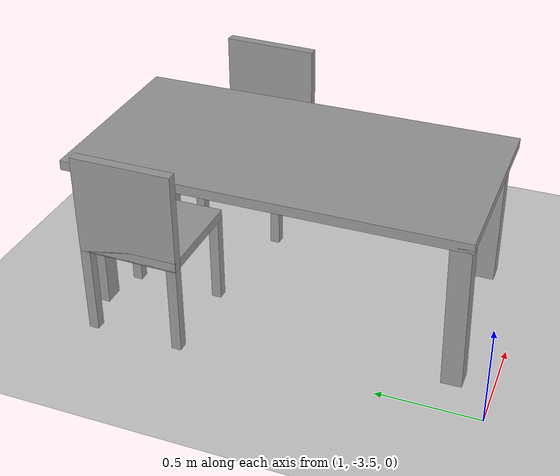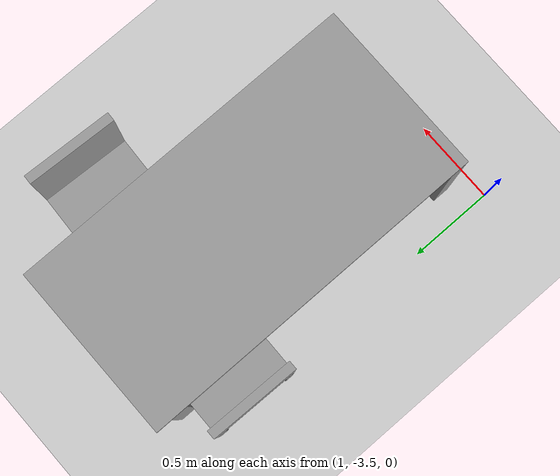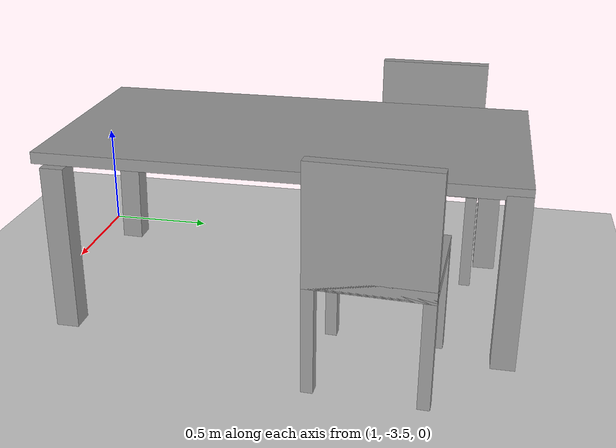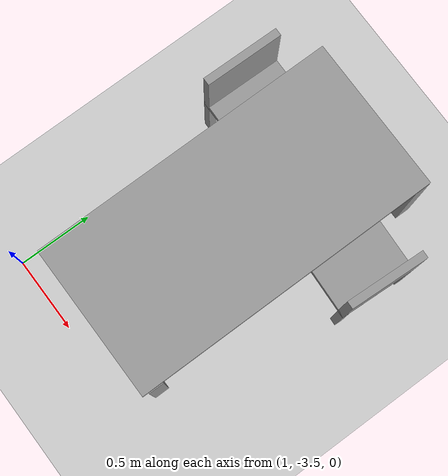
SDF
<sdf version="1.6">
 <world name="default">
  <model name="ground_plane">
   <static>1</static>
   <link name="link">
    <collision name="collision">
     <geometry><plane><normal>0 0 1</normal><size>100 100</size></plane></geometry>
     <surface><friction><ode><mu>100</mu><mu2>50</mu2></ode></friction></surface>
    </collision>
    <visual name="visual">
     <cast_shadows>0</cast_shadows>
     <geometry><plane><normal>0 0 1</normal><size>100 100</size></plane></geometry>
     <material>
      <script><uri>file://media/materials/scripts/gazebo.material</uri><name>Gazebo/Grey</name></script>
     </material>
    </visual>
   </link>
  </model>
  <model name="table">
   <link name="link_2">
    <pose>-0.000914 0.01077 -0.287764 0 -0 0</pose>
    <inertial>
     <mass>1</mass>
     <inertia>
      <ixx>0.166667</ixx>
      <ixy>0</ixy>
      <ixz>0</ixz>
      <iyy>0.166667</iyy>
      <iyz>0</iyz>
      <izz>0.166667</izz>
     </inertia>
    </inertial>
    <visual name="visual">
     <pose>0 0 0.75 0 -0 0</pose>
     <geometry><box><size>1 2 0.05</size></box></geometry>
     <material>
      <lighting>1</lighting>
      <script><uri>file://media/materials/scripts/gazebo.material</uri><name>Gazebo/Grey</name></script>
      <ambient>0.3 0.3 0.3 1</ambient>
      <diffuse>0.7 0.7 0.7 1</diffuse>
      <specular>0.01 0.01 0.01 1</specular>
      <emissive>0 0 0 1</emissive>
      <shader type="vertex"><normal_map>__default__</normal_map></shader>
     </material>
    </visual>
    <collision name="collision">
     <pose>0 0 0.75 0 -0 0</pose>
     <geometry><box><size>1 2 0.05</size></box></geometry>
     <surface>
      <friction>
       <ode><mu>1</mu><mu2>1</mu2><fdir1>0 0 0</fdir1><slip1>0</slip1><slip2>0</slip2></ode>
       <torsional>
        <coefficient>1</coefficient>
        <patch_radius>0</patch_radius>
        <surface_radius>0</surface_radius>
        <use_patch_radius>1</use_patch_radius>
        <ode><slip>0</slip></ode>
       </torsional>
      </friction>
      <bounce><restitution_coefficient>0</restitution_coefficient><threshold>1e+06</threshold></bounce>
      <contact>
       <collide_without_contact>0</collide_without_contact>
       <collide_without_contact_bitmask>1</collide_without_contact_bitmask>
       <collide_bitmask>1</collide_bitmask>
       <ode>
        <soft_cfm>0</soft_cfm>
        <soft_erp>0.2</soft_erp>
        <kp>1e+13</kp>
        <kd>1</kd>
        <max_vel>0.01</max_vel>
        <min_depth>0</min_depth>
       </ode>
       <bullet>
        <split_impulse>1</split_impulse>
        <split_impulse_penetration_threshold>-0.01</split_impulse_penetration_threshold>
        <soft_cfm>0</soft_cfm>
        <soft_erp>0.2</soft_erp>
        <kp>1e+13</kp>
        <kd>1</kd>
       </bullet>
      </contact>
     </surface>
    </collision>
   </link>
   <link name="link_3">
    <pose>-0.450914 0.87078 0.080236 0 -0 0</pose>
    <inertial>
     <mass>1</mass>
     <inertia>
      <ixx>0.166667</ixx>
      <ixy>0</ixy>
      <ixz>0</ixz>
      <iyy>0.166667</iyy>
      <iyz>0</iyz>
      <izz>0.166667</izz>
     </inertia>
    </inertial>
    <visual name="visual">
     <geometry><box><size>0.1 0.1 0.75</size></box></geometry>
     <material>
      <lighting>1</lighting>
      <script><uri>file://media/materials/scripts/gazebo.material</uri><name>Gazebo/Grey</name></script>
      <ambient>0.3 0.3 0.3 1</ambient>
      <diffuse>0.7 0.7 0.7 1</diffuse>
      <specular>0.01 0.01 0.01 1</specular>
      <emissive>0 0 0 1</emissive>
      <shader type="vertex"><normal_map>__default__</normal_map></shader>
     </material>
    </visual>
    <collision name="collision">
     <geometry><box><size>0.1 0.1 0.75</size></box></geometry>
     <surface>
      <friction>
       <ode><mu>1</mu><mu2>1</mu2><fdir1>0 0 0</fdir1><slip1>0</slip1><slip2>0</slip2></ode>
       <torsional>
        <coefficient>1</coefficient>
        <patch_radius>0</patch_radius>
        <surface_radius>0</surface_radius>
        <use_patch_radius>1</use_patch_radius>
        <ode><slip>0</slip></ode>
       </torsional>
      </friction>
      <bounce><restitution_coefficient>0</restitution_coefficient><threshold>1e+06</threshold></bounce>
      <contact>
       <collide_without_contact>0</collide_without_contact>
       <collide_without_contact_bitmask>1</collide_without_contact_bitmask>
       <collide_bitmask>1</collide_bitmask>
       <ode>
        <soft_cfm>0</soft_cfm>
        <soft_erp>0.2</soft_erp>
        <kp>1e+13</kp>
        <kd>1</kd>
        <max_vel>0.01</max_vel>
        <min_depth>0</min_depth>
       </ode>
       <bullet>
        <split_impulse>1</split_impulse>
        <split_impulse_penetration_threshold>-0.01</split_impulse_penetration_threshold>
        <soft_cfm>0</soft_cfm>
        <soft_erp>0.2</soft_erp>
        <kp>1e+13</kp>
        <kd>1</kd>
       </bullet>
      </contact>
     </surface>
    </collision>
   </link>
   <link name="link_3_clone_0">
    <pose>0.45366 -0.903088 0.047057 0 -0 0</pose>
    <inertial>
     <mass>1</mass>
     <inertia>
      <ixx>0.166667</ixx>
      <ixy>0</ixy>
      <ixz>0</ixz>
      <iyy>0.166667</iyy>
      <iyz>0</iyz>
      <izz>0.166667</izz>
     </inertia>
    </inertial>
    <visual name="visual">
     <geometry><box><size>0.1 0.1 0.75</size></box></geometry>
     <material>
      <lighting>1</lighting>
      <script><uri>file://media/materials/scripts/gazebo.material</uri><name>Gazebo/Grey</name></script>
      <ambient>0.3 0.3 0.3 1</ambient>
      <diffuse>0.7 0.7 0.7 1</diffuse>
      <specular>0.01 0.01 0.01 1</specular>
      <emissive>0 0 0 1</emissive>
      <shader type="vertex"><normal_map>__default__</normal_map></shader>
     </material>
    </visual>
    <collision name="collision">
     <geometry><box><size>0.1 0.1 0.75</size></box></geometry>
     <surface>
      <friction>
       <ode><mu>1</mu><mu2>1</mu2><fdir1>0 0 0</fdir1><slip1>0</slip1><slip2>0</slip2></ode>
       <torsional>
        <coefficient>1</coefficient>
        <patch_radius>0</patch_radius>
        <surface_radius>0</surface_radius>
        <use_patch_radius>1</use_patch_radius>
        <ode><slip>0</slip></ode>
       </torsional>
      </friction>
      <bounce><restitution_coefficient>0</restitution_coefficient><threshold>1e+06</threshold></bounce>
      <contact>
       <collide_without_contact>0</collide_without_contact>
       <collide_without_contact_bitmask>1</collide_without_contact_bitmask>
       <collide_bitmask>1</collide_bitmask>
       <ode>
        <soft_cfm>0</soft_cfm>
        <soft_erp>0.2</soft_erp>
        <kp>1e+13</kp>
        <kd>1</kd>
        <max_vel>0.01</max_vel>
        <min_depth>0</min_depth>
       </ode>
       <bullet>
        <split_impulse>1</split_impulse>
        <split_impulse_penetration_threshold>-0.01</split_impulse_penetration_threshold>
        <soft_cfm>0</soft_cfm>
        <soft_erp>0.2</soft_erp>
        <kp>1e+13</kp>
        <kd>1</kd>
       </bullet>
      </contact>
     </surface>
    </collision>
   </link>
   <link name="link_3_clone_0_clone">
    <pose>-0.450914 -0.93923 0.080236 -0.02 0 0</pose>
    <inertial>
     <mass>1</mass>
     <inertia>
      <ixx>0.166667</ixx>
      <ixy>0</ixy>
      <ixz>0</ixz>
      <iyy>0.166667</iyy>
      <iyz>0</iyz>
      <izz>0.166667</izz>
     </inertia>
    </inertial>
    <visual name="visual">
     <geometry><box><size>0.1 0.1 0.75</size></box></geometry>
     <material>
      <lighting>1</lighting>
      <script><uri>file://media/materials/scripts/gazebo.material</uri><name>Gazebo/Grey</name></script>
      <ambient>0.3 0.3 0.3 1</ambient>
      <diffuse>0.7 0.7 0.7 1</diffuse>
      <specular>0.01 0.01 0.01 1</specular>
      <emissive>0 0 0 1</emissive>
      <shader type="vertex"><normal_map>__default__</normal_map></shader>
     </material>
    </visual>
    <collision name="collision">
     <geometry><box><size>0.1 0.1 0.75</size></box></geometry>
     <surface>
      <friction>
       <ode><mu>1</mu><mu2>1</mu2><fdir1>0 0 0</fdir1><slip1>0</slip1><slip2>0</slip2></ode>
       <torsional>
        <coefficient>1</coefficient>
        <patch_radius>0</patch_radius>
        <surface_radius>0</surface_radius>
        <use_patch_radius>1</use_patch_radius>
        <ode><slip>0</slip></ode>
       </torsional>
      </friction>
      <bounce><restitution_coefficient>0</restitution_coefficient><threshold>1e+06</threshold></bounce>
      <contact>
       <collide_without_contact>0</collide_without_contact>
       <collide_without_contact_bitmask>1</collide_without_contact_bitmask>
       <collide_bitmask>1</collide_bitmask>
       <ode>
        <soft_cfm>0</soft_cfm>
        <soft_erp>0.2</soft_erp>
        <kp>1e+13</kp>
        <kd>1</kd>
        <max_vel>0.01</max_vel>
        <min_depth>0</min_depth>
       </ode>
       <bullet>
        <split_impulse>1</split_impulse>
        <split_impulse_penetration_threshold>-0.01</split_impulse_penetration_threshold>
        <soft_cfm>0</soft_cfm>
        <soft_erp>0.2</soft_erp>
        <kp>1e+13</kp>
        <kd>1</kd>
       </bullet>
      </contact>
     </surface>
    </collision>
   </link>
   <link name="link_3_clone_1">
    <pose>0.449089 0.960775 0.080236 0 -0 0</pose>
    <inertial>
     <mass>1</mass>
     <inertia>
      <ixx>0.166667</ixx>
      <ixy>0</ixy>
      <ixz>0</ixz>
      <iyy>0.166667</iyy>
      <iyz>0</iyz>
      <izz>0.166667</izz>
     </inertia>
    </inertial>
    <visual name="visual">
     <geometry><box><size>0.1 0.1 0.75</size></box></geometry>
     <material>
      <lighting>1</lighting>
      <script><uri>file://media/materials/scripts/gazebo.material</uri><name>Gazebo/Grey</name></script>
      <ambient>0.3 0.3 0.3 1</ambient>
      <diffuse>0.7 0.7 0.7 1</diffuse>
      <specular>0.01 0.01 0.01 1</specular>
      <emissive>0 0 0 1</emissive>
      <shader type="vertex"><normal_map>__default__</normal_map></shader>
     </material>
    </visual>
    <collision name="collision">
     <geometry><box><size>0.1 0.1 0.75</size></box></geometry>
     <surface>
      <friction>
       <ode><mu>1</mu><mu2>1</mu2><fdir1>0 0 0</fdir1><slip1>0</slip1><slip2>0</slip2></ode>
       <torsional>
        <coefficient>1</coefficient>
        <patch_radius>0</patch_radius>
        <surface_radius>0</surface_radius>
        <use_patch_radius>1</use_patch_radius>
        <ode><slip>0</slip></ode>
       </torsional>
      </friction>
      <bounce><restitution_coefficient>0</restitution_coefficient><threshold>1e+06</threshold></bounce>
      <contact>
       <collide_without_contact>0</collide_without_contact>
       <collide_without_contact_bitmask>1</collide_without_contact_bitmask>
       <collide_bitmask>1</collide_bitmask>
       <ode>
        <soft_cfm>0</soft_cfm>
        <soft_erp>0.2</soft_erp>
        <kp>1e+13</kp>
        <kd>1</kd>
        <max_vel>0.01</max_vel>
        <min_depth>0</min_depth>
       </ode>
       <bullet>
        <split_impulse>1</split_impulse>
        <split_impulse_penetration_threshold>-0.01</split_impulse_penetration_threshold>
        <soft_cfm>0</soft_cfm>
        <soft_erp>0.2</soft_erp>
        <kp>1e+13</kp>
        <kd>1</kd>
       </bullet>
      </contact>
     </surface>
    </collision>
   </link>
   <joint name="link_2_JOINT_10" type="fixed">
    <parent>link_2</parent>
    <child>link_3_clone_1</child>
    <physics>
     <ode><limit><cfm>0</cfm><erp>0.2</erp></limit><suspension><cfm>0</cfm><erp>0.2</erp></suspension></ode>
    </physics>
   </joint>
   <joint name="link_2_JOINT_11" type="fixed">
    <parent>link_2</parent>
    <child>link_3</child>
    <physics>
     <ode><limit><cfm>0</cfm><erp>0.2</erp></limit><suspension><cfm>0</cfm><erp>0.2</erp></suspension></ode>
    </physics>
   </joint>
   <joint name="link_2_JOINT_12" type="fixed">
    <parent>link_2</parent>
    <child>link_3_clone_0_clone</child>
    <physics>
     <ode><limit><cfm>0</cfm><erp>0.2</erp></limit><suspension><cfm>0</cfm><erp>0.2</erp></suspension></ode>
    </physics>
   </joint>
   <joint name="link_2_JOINT_8" type="fixed">
    <parent>link_2</parent>
    <child>link_3_clone_0</child>
    <physics>
     <ode><limit><cfm>0</cfm><erp>0.2</erp></limit><suspension><cfm>0</cfm><erp>0.2</erp></suspension></ode>
    </physics>
   </joint>
   <joint name="link_2_JOINT_9" type="fixed">
    <parent>link_2</parent>
    <child>link_3</child>
    <physics>
     <ode><limit><cfm>0</cfm><erp>0.2</erp></limit><suspension><cfm>0</cfm><erp>0.2</erp></suspension></ode>
    </physics>
   </joint>
   <static>0</static>
   <pose>1.66154 -2.36692 0.309262 0 -0 0</pose>
  </model>
  <model name="Chair_clone_clone">
   <link name="link_5">
    <pose>-0.225 0.256445 -0.120833 0 -0 0</pose>
    <inertial>
     <mass>1</mass>
     <inertia>
      <ixx>0.166667</ixx>
      <ixy>0</ixy>
      <ixz>0</ixz>
      <iyy>0.166667</iyy>
      <iyz>0</iyz>
      <izz>0.166667</izz>
     </inertia>
    </inertial>
    <visual name="visual">
     <geometry><box><size>0.05 0.05 0.45</size></box></geometry>
     <material>
      <lighting>1</lighting>
      <script><uri>file://media/materials/scripts/gazebo.material</uri><name>Gazebo/Grey</name></script>
      <ambient>0.3 0.3 0.3 1</ambient>
      <diffuse>0.7 0.7 0.7 1</diffuse>
      <specular>0.01 0.01 0.01 1</specular>
      <emissive>0 0 0 1</emissive>
      <shader type="vertex"><normal_map>__default__</normal_map></shader>
     </material>
    </visual>
    <collision name="collision">
     <geometry><box><size>0.05 0.05 0.45</size></box></geometry>
     <surface>
      <friction>
       <ode><mu>1</mu><mu2>1</mu2><fdir1>0 0 0</fdir1><slip1>0</slip1><slip2>0</slip2></ode>
       <torsional>
        <coefficient>1</coefficient>
        <patch_radius>0</patch_radius>
        <surface_radius>0</surface_radius>
        <use_patch_radius>1</use_patch_radius>
        <ode><slip>0</slip></ode>
       </torsional>
      </friction>
      <bounce><restitution_coefficient>0</restitution_coefficient><threshold>1e+06</threshold></bounce>
      <contact>
       <collide_without_contact>0</collide_without_contact>
       <collide_without_contact_bitmask>1</collide_without_contact_bitmask>
       <collide_bitmask>1</collide_bitmask>
       <ode>
        <soft_cfm>0</soft_cfm>
        <soft_erp>0.2</soft_erp>
        <kp>1e+13</kp>
        <kd>1</kd>
        <max_vel>0.01</max_vel>
        <min_depth>0</min_depth>
       </ode>
       <bullet>
        <split_impulse>1</split_impulse>
        <split_impulse_penetration_threshold>-0.01</split_impulse_penetration_threshold>
        <soft_cfm>0</soft_cfm>
        <soft_erp>0.2</soft_erp>
        <kp>1e+13</kp>
        <kd>1</kd>
       </bullet>
      </contact>
     </surface>
    </collision>
   </link>
   <link name="link_5_clone">
    <pose>0.225 0.263711 -0.120833 0 -0 0</pose>
    <inertial>
     <mass>1</mass>
     <inertia>
      <ixx>0.166667</ixx>
      <ixy>0</ixy>
      <ixz>0</ixz>
      <iyy>0.166667</iyy>
      <iyz>0</iyz>
      <izz>0.166667</izz>
     </inertia>
    </inertial>
    <visual name="visual">
     <geometry><box><size>0.05 0.05 0.45</size></box></geometry>
     <material>
      <lighting>1</lighting>
      <script><uri>file://media/materials/scripts/gazebo.material</uri><name>Gazebo/Grey</name></script>
      <ambient>0.3 0.3 0.3 1</ambient>
      <diffuse>0.7 0.7 0.7 1</diffuse>
      <specular>0.01 0.01 0.01 1</specular>
      <emissive>0 0 0 1</emissive>
      <shader type="vertex"><normal_map>__default__</normal_map></shader>
     </material>
    </visual>
    <collision name="collision">
     <geometry><box><size>0.05 0.05 0.45</size></box></geometry>
     <surface>
      <friction>
       <ode><mu>1</mu><mu2>1</mu2><fdir1>0 0 0</fdir1><slip1>0</slip1><slip2>0</slip2></ode>
       <torsional>
        <coefficient>1</coefficient>
        <patch_radius>0</patch_radius>
        <surface_radius>0</surface_radius>
        <use_patch_radius>1</use_patch_radius>
        <ode><slip>0</slip></ode>
       </torsional>
      </friction>
      <bounce><restitution_coefficient>0</restitution_coefficient><threshold>1e+06</threshold></bounce>
      <contact>
       <collide_without_contact>0</collide_without_contact>
       <collide_without_contact_bitmask>1</collide_without_contact_bitmask>
       <collide_bitmask>1</collide_bitmask>
       <ode>
        <soft_cfm>0</soft_cfm>
        <soft_erp>0.2</soft_erp>
        <kp>1e+13</kp>
        <kd>1</kd>
        <max_vel>0.01</max_vel>
        <min_depth>0</min_depth>
       </ode>
       <bullet>
        <split_impulse>1</split_impulse>
        <split_impulse_penetration_threshold>-0.01</split_impulse_penetration_threshold>
        <soft_cfm>0</soft_cfm>
        <soft_erp>0.2</soft_erp>
        <kp>1e+13</kp>
        <kd>1</kd>
       </bullet>
      </contact>
     </surface>
    </collision>
   </link>
   <link name="link_5_clone_0">
    <pose>0.225 -0.186289 -0.120833 0 -0 0</pose>
    <inertial>
     <mass>1</mass>
     <inertia>
      <ixx>0.166667</ixx>
      <ixy>0</ixy>
      <ixz>0</ixz>
      <iyy>0.166667</iyy>
      <iyz>0</iyz>
      <izz>0.166667</izz>
     </inertia>
    </inertial>
    <visual name="visual">
     <geometry><box><size>0.05 0.05 0.45</size></box></geometry>
     <material>
      <lighting>1</lighting>
      <script><uri>file://media/materials/scripts/gazebo.material</uri><name>Gazebo/Grey</name></script>
      <ambient>0.3 0.3 0.3 1</ambient>
      <diffuse>0.7 0.7 0.7 1</diffuse>
      <specular>0.01 0.01 0.01 1</specular>
      <emissive>0 0 0 1</emissive>
      <shader type="vertex"><normal_map>__default__</normal_map></shader>
     </material>
    </visual>
    <collision name="collision">
     <geometry><box><size>0.05 0.05 0.45</size></box></geometry>
     <surface>
      <friction>
       <ode><mu>1</mu><mu2>1</mu2><fdir1>0 0 0</fdir1><slip1>0</slip1><slip2>0</slip2></ode>
       <torsional>
        <coefficient>1</coefficient>
        <patch_radius>0</patch_radius>
        <surface_radius>0</surface_radius>
        <use_patch_radius>1</use_patch_radius>
        <ode><slip>0</slip></ode>
       </torsional>
      </friction>
      <bounce><restitution_coefficient>0</restitution_coefficient><threshold>1e+06</threshold></bounce>
      <contact>
       <collide_without_contact>0</collide_without_contact>
       <collide_without_contact_bitmask>1</collide_without_contact_bitmask>
       <collide_bitmask>1</collide_bitmask>
       <ode>
        <soft_cfm>0</soft_cfm>
        <soft_erp>0.2</soft_erp>
        <kp>1e+13</kp>
        <kd>1</kd>
        <max_vel>0.01</max_vel>
        <min_depth>0</min_depth>
       </ode>
       <bullet>
        <split_impulse>1</split_impulse>
        <split_impulse_penetration_threshold>-0.01</split_impulse_penetration_threshold>
        <soft_cfm>0</soft_cfm>
        <soft_erp>0.2</soft_erp>
        <kp>1e+13</kp>
        <kd>1</kd>
       </bullet>
      </contact>
     </surface>
    </collision>
   </link>
   <link name="link_5_clone_1">
    <pose>-0.225 -0.186289 -0.120833 0 -0 0</pose>
    <inertial>
     <mass>1</mass>
     <inertia>
      <ixx>0.166667</ixx>
      <ixy>0</ixy>
      <ixz>0</ixz>
      <iyy>0.166667</iyy>
      <iyz>0</iyz>
      <izz>0.166667</izz>
     </inertia>
    </inertial>
    <visual name="visual">
     <geometry><box><size>0.05 0.05 0.45</size></box></geometry>
     <material>
      <lighting>1</lighting>
      <script><uri>file://media/materials/scripts/gazebo.material</uri><name>Gazebo/Grey</name></script>
      <ambient>0.3 0.3 0.3 1</ambient>
      <diffuse>0.7 0.7 0.7 1</diffuse>
      <specular>0.01 0.01 0.01 1</specular>
      <emissive>0 0 0 1</emissive>
      <shader type="vertex"><normal_map>__default__</normal_map></shader>
     </material>
    </visual>
    <collision name="collision">
     <geometry><box><size>0.05 0.05 0.45</size></box></geometry>
     <surface>
      <friction>
       <ode><mu>1</mu><mu2>1</mu2><fdir1>0 0 0</fdir1><slip1>0</slip1><slip2>0</slip2></ode>
       <torsional>
        <coefficient>1</coefficient>
        <patch_radius>0</patch_radius>
        <surface_radius>0</surface_radius>
        <use_patch_radius>1</use_patch_radius>
        <ode><slip>0</slip></ode>
       </torsional>
      </friction>
      <bounce><restitution_coefficient>0</restitution_coefficient><threshold>1e+06</threshold></bounce>
      <contact>
       <collide_without_contact>0</collide_without_contact>
       <collide_without_contact_bitmask>1</collide_without_contact_bitmask>
       <collide_bitmask>1</collide_bitmask>
       <ode>
        <soft_cfm>0</soft_cfm>
        <soft_erp>0.2</soft_erp>
        <kp>1e+13</kp>
        <kd>1</kd>
        <max_vel>0.01</max_vel>
        <min_depth>0</min_depth>
       </ode>
       <bullet>
        <split_impulse>1</split_impulse>
        <split_impulse_penetration_threshold>-0.01</split_impulse_penetration_threshold>
        <soft_cfm>0</soft_cfm>
        <soft_erp>0.2</soft_erp>
        <kp>1e+13</kp>
        <kd>1</kd>
       </bullet>
      </contact>
     </surface>
    </collision>
   </link>
   <link name="link_7">
    <pose>-0 -0.186289 0.354167 0 -0 0</pose>
    <inertial>
     <mass>1</mass>
     <inertia>
      <ixx>0.166667</ixx>
      <ixy>0</ixy>
      <ixz>0</ixz>
      <iyy>0.166667</iyy>
      <iyz>0</iyz>
      <izz>0.166667</izz>
     </inertia>
    </inertial>
    <visual name="visual">
     <geometry><box><size>0.5 0.05 0.5</size></box></geometry>
     <material>
      <lighting>1</lighting>
      <script><uri>file://media/materials/scripts/gazebo.material</uri><name>Gazebo/Grey</name></script>
      <ambient>0.3 0.3 0.3 1</ambient>
      <diffuse>0.7 0.7 0.7 1</diffuse>
      <specular>0.01 0.01 0.01 1</specular>
      <emissive>0 0 0 1</emissive>
      <shader type="vertex"><normal_map>__default__</normal_map></shader>
     </material>
    </visual>
    <collision name="collision">
     <geometry><box><size>0.5 0.05 0.5</size></box></geometry>
     <surface>
      <friction>
       <ode><mu>1</mu><mu2>1</mu2><fdir1>0 0 0</fdir1><slip1>0</slip1><slip2>0</slip2></ode>
       <torsional>
        <coefficient>1</coefficient>
        <patch_radius>0</patch_radius>
        <surface_radius>0</surface_radius>
        <use_patch_radius>1</use_patch_radius>
        <ode><slip>0</slip></ode>
       </torsional>
      </friction>
      <bounce><restitution_coefficient>0</restitution_coefficient><threshold>1e+06</threshold></bounce>
      <contact>
       <collide_without_contact>0</collide_without_contact>
       <collide_without_contact_bitmask>1</collide_without_contact_bitmask>
       <collide_bitmask>1</collide_bitmask>
       <ode>
        <soft_cfm>0</soft_cfm>
        <soft_erp>0.2</soft_erp>
        <kp>1e+13</kp>
        <kd>1</kd>
        <max_vel>0.01</max_vel>
        <min_depth>0</min_depth>
       </ode>
       <bullet>
        <split_impulse>1</split_impulse>
        <split_impulse_penetration_threshold>-0.01</split_impulse_penetration_threshold>
        <soft_cfm>0</soft_cfm>
        <soft_erp>0.2</soft_erp>
        <kp>1e+13</kp>
        <kd>1</kd>
       </bullet>
      </contact>
     </surface>
    </collision>
   </link>
   <link name="link_8">
    <pose>-0 0.038711 0.129167 0 -0 0</pose>
    <inertial>
     <mass>1</mass>
     <inertia>
      <ixx>0.166667</ixx>
      <ixy>0</ixy>
      <ixz>0</ixz>
      <iyy>0.166667</iyy>
      <iyz>0</iyz>
      <izz>0.166667</izz>
     </inertia>
    </inertial>
    <visual name="visual">
     <geometry><box><size>0.5 0.5 0.05</size></box></geometry>
     <material>
      <lighting>1</lighting>
      <script><uri>file://media/materials/scripts/gazebo.material</uri><name>Gazebo/Grey</name></script>
      <ambient>0.3 0.3 0.3 1</ambient>
      <diffuse>0.7 0.7 0.7 1</diffuse>
      <specular>0.01 0.01 0.01 1</specular>
      <emissive>0 0 0 1</emissive>
      <shader type="vertex"><normal_map>__default__</normal_map></shader>
     </material>
    </visual>
    <collision name="collision">
     <geometry><box><size>0.5 0.5 0.05</size></box></geometry>
     <surface>
      <friction>
       <ode><mu>1</mu><mu2>1</mu2><fdir1>0 0 0</fdir1><slip1>0</slip1><slip2>0</slip2></ode>
       <torsional>
        <coefficient>1</coefficient>
        <patch_radius>0</patch_radius>
        <surface_radius>0</surface_radius>
        <use_patch_radius>1</use_patch_radius>
        <ode><slip>0</slip></ode>
       </torsional>
      </friction>
      <bounce><restitution_coefficient>0</restitution_coefficient><threshold>1e+06</threshold></bounce>
      <contact>
       <collide_without_contact>0</collide_without_contact>
       <collide_without_contact_bitmask>1</collide_without_contact_bitmask>
       <collide_bitmask>1</collide_bitmask>
       <ode>
        <soft_cfm>0</soft_cfm>
        <soft_erp>0.2</soft_erp>
        <kp>1e+13</kp>
        <kd>1</kd>
        <max_vel>0.01</max_vel>
        <min_depth>0</min_depth>
       </ode>
       <bullet>
        <split_impulse>1</split_impulse>
        <split_impulse_penetration_threshold>-0.01</split_impulse_penetration_threshold>
        <soft_cfm>0</soft_cfm>
        <soft_erp>0.2</soft_erp>
        <kp>1e+13</kp>
        <kd>1</kd>
       </bullet>
      </contact>
     </surface>
    </collision>
   </link>
   <joint name="link_8_JOINT_15" type="fixed">
    <parent>link_8</parent>
    <child>link_5_clone</child>
    <physics>
     <ode><limit><cfm>0</cfm><erp>0.2</erp></limit><suspension><cfm>0</cfm><erp>0.2</erp></suspension></ode>
    </physics>
   </joint>
   <joint name="link_8_JOINT_16" type="fixed">
    <parent>link_8</parent>
    <child>link_5</child>
    <physics>
     <ode><limit><cfm>0</cfm><erp>0.2</erp></limit><suspension><cfm>0</cfm><erp>0.2</erp></suspension></ode>
    </physics>
   </joint>
   <joint name="link_8_JOINT_17" type="fixed">
    <parent>link_8</parent>
    <child>link_5</child>
    <physics>
     <ode><limit><cfm>0</cfm><erp>0.2</erp></limit><suspension><cfm>0</cfm><erp>0.2</erp></suspension></ode>
    </physics>
   </joint>
   <joint name="link_8_JOINT_18" type="fixed">
    <parent>link_8</parent>
    <child>link_5_clone_0</child>
    <physics>
     <ode><limit><cfm>0</cfm><erp>0.2</erp></limit><suspension><cfm>0</cfm><erp>0.2</erp></suspension></ode>
    </physics>
   </joint>
   <joint name="link_8_JOINT_19" type="fixed">
    <parent>link_8</parent>
    <child>link_5_clone_1</child>
    <physics>
     <ode><limit><cfm>0</cfm><erp>0.2</erp></limit><suspension><cfm>0</cfm><erp>0.2</erp></suspension></ode>
    </physics>
   </joint>
   <joint name="link_8_JOINT_20" type="fixed">
    <parent>link_8</parent>
    <child>link_7</child>
    <physics>
     <ode><limit><cfm>0</cfm><erp>0.2</erp></limit><suspension><cfm>0</cfm><erp>0.2</erp></suspension></ode>
    </physics>
   </joint>
   <static>0</static>
   <pose>1.16496 -1.80222 0.353802 0 0 -1.58438</pose>
  </model>
  <model name="Chair_clone_clone_0_clone">
   <link name="link_5">
    <pose>-0.225 0.256445 -0.120833 0 -0 0</pose>
    <inertial>
     <mass>1</mass>
     <inertia>
      <ixx>0.166667</ixx>
      <ixy>0</ixy>
      <ixz>0</ixz>
      <iyy>0.166667</iyy>
      <iyz>0</iyz>
      <izz>0.166667</izz>
     </inertia>
    </inertial>
    <visual name="visual">
     <geometry><box><size>0.05 0.05 0.45</size></box></geometry>
     <material>
      <lighting>1</lighting>
      <script><uri>file://media/materials/scripts/gazebo.material</uri><name>Gazebo/Grey</name></script>
      <ambient>0.3 0.3 0.3 1</ambient>
      <diffuse>0.7 0.7 0.7 1</diffuse>
      <specular>0.01 0.01 0.01 1</specular>
      <emissive>0 0 0 1</emissive>
      <shader type="vertex"><normal_map>__default__</normal_map></shader>
     </material>
    </visual>
    <collision name="collision">
     <geometry><box><size>0.05 0.05 0.45</size></box></geometry>
     <surface>
      <friction>
       <ode><mu>1</mu><mu2>1</mu2><fdir1>0 0 0</fdir1><slip1>0</slip1><slip2>0</slip2></ode>
       <torsional>
        <coefficient>1</coefficient>
        <patch_radius>0</patch_radius>
        <surface_radius>0</surface_radius>
        <use_patch_radius>1</use_patch_radius>
        <ode><slip>0</slip></ode>
       </torsional>
      </friction>
      <bounce><restitution_coefficient>0</restitution_coefficient><threshold>1e+06</threshold></bounce>
      <contact>
       <collide_without_contact>0</collide_without_contact>
       <collide_without_contact_bitmask>1</collide_without_contact_bitmask>
       <collide_bitmask>1</collide_bitmask>
       <ode>
        <soft_cfm>0</soft_cfm>
        <soft_erp>0.2</soft_erp>
        <kp>1e+13</kp>
        <kd>1</kd>
        <max_vel>0.01</max_vel>
        <min_depth>0</min_depth>
       </ode>
       <bullet>
        <split_impulse>1</split_impulse>
        <split_impulse_penetration_threshold>-0.01</split_impulse_penetration_threshold>
        <soft_cfm>0</soft_cfm>
        <soft_erp>0.2</soft_erp>
        <kp>1e+13</kp>
        <kd>1</kd>
       </bullet>
      </contact>
     </surface>
    </collision>
   </link>
   <link name="link_5_clone">
    <pose>0.225 0.263711 -0.120833 0 -0 0</pose>
    <inertial>
     <mass>1</mass>
     <inertia>
      <ixx>0.166667</ixx>
      <ixy>0</ixy>
      <ixz>0</ixz>
      <iyy>0.166667</iyy>
      <iyz>0</iyz>
      <izz>0.166667</izz>
     </inertia>
    </inertial>
    <visual name="visual">
     <geometry><box><size>0.05 0.05 0.45</size></box></geometry>
     <material>
      <lighting>1</lighting>
      <script><uri>file://media/materials/scripts/gazebo.material</uri><name>Gazebo/Grey</name></script>
      <ambient>0.3 0.3 0.3 1</ambient>
      <diffuse>0.7 0.7 0.7 1</diffuse>
      <specular>0.01 0.01 0.01 1</specular>
      <emissive>0 0 0 1</emissive>
      <shader type="vertex"><normal_map>__default__</normal_map></shader>
     </material>
    </visual>
    <collision name="collision">
     <geometry><box><size>0.05 0.05 0.45</size></box></geometry>
     <surface>
      <friction>
       <ode><mu>1</mu><mu2>1</mu2><fdir1>0 0 0</fdir1><slip1>0</slip1><slip2>0</slip2></ode>
       <torsional>
        <coefficient>1</coefficient>
        <patch_radius>0</patch_radius>
        <surface_radius>0</surface_radius>
        <use_patch_radius>1</use_patch_radius>
        <ode><slip>0</slip></ode>
       </torsional>
      </friction>
      <bounce><restitution_coefficient>0</restitution_coefficient><threshold>1e+06</threshold></bounce>
      <contact>
       <collide_without_contact>0</collide_without_contact>
       <collide_without_contact_bitmask>1</collide_without_contact_bitmask>
       <collide_bitmask>1</collide_bitmask>
       <ode>
        <soft_cfm>0</soft_cfm>
        <soft_erp>0.2</soft_erp>
        <kp>1e+13</kp>
        <kd>1</kd>
        <max_vel>0.01</max_vel>
        <min_depth>0</min_depth>
       </ode>
       <bullet>
        <split_impulse>1</split_impulse>
        <split_impulse_penetration_threshold>-0.01</split_impulse_penetration_threshold>
        <soft_cfm>0</soft_cfm>
        <soft_erp>0.2</soft_erp>
        <kp>1e+13</kp>
        <kd>1</kd>
       </bullet>
      </contact>
     </surface>
    </collision>
   </link>
   <link name="link_5_clone_0">
    <pose>0.225 -0.186289 -0.120833 0 -0 0</pose>
    <inertial>
     <mass>1</mass>
     <inertia>
      <ixx>0.166667</ixx>
      <ixy>0</ixy>
      <ixz>0</ixz>
      <iyy>0.166667</iyy>
      <iyz>0</iyz>
      <izz>0.166667</izz>
     </inertia>
    </inertial>
    <visual name="visual">
     <geometry><box><size>0.05 0.05 0.45</size></box></geometry>
     <material>
      <lighting>1</lighting>
      <script><uri>file://media/materials/scripts/gazebo.material</uri><name>Gazebo/Grey</name></script>
      <ambient>0.3 0.3 0.3 1</ambient>
      <diffuse>0.7 0.7 0.7 1</diffuse>
      <specular>0.01 0.01 0.01 1</specular>
      <emissive>0 0 0 1</emissive>
      <shader type="vertex"><normal_map>__default__</normal_map></shader>
     </material>
    </visual>
    <collision name="collision">
     <geometry><box><size>0.05 0.05 0.45</size></box></geometry>
     <surface>
      <friction>
       <ode><mu>1</mu><mu2>1</mu2><fdir1>0 0 0</fdir1><slip1>0</slip1><slip2>0</slip2></ode>
       <torsional>
        <coefficient>1</coefficient>
        <patch_radius>0</patch_radius>
        <surface_radius>0</surface_radius>
        <use_patch_radius>1</use_patch_radius>
        <ode><slip>0</slip></ode>
       </torsional>
      </friction>
      <bounce><restitution_coefficient>0</restitution_coefficient><threshold>1e+06</threshold></bounce>
      <contact>
       <collide_without_contact>0</collide_without_contact>
       <collide_without_contact_bitmask>1</collide_without_contact_bitmask>
       <collide_bitmask>1</collide_bitmask>
       <ode>
        <soft_cfm>0</soft_cfm>
        <soft_erp>0.2</soft_erp>
        <kp>1e+13</kp>
        <kd>1</kd>
        <max_vel>0.01</max_vel>
        <min_depth>0</min_depth>
       </ode>
       <bullet>
        <split_impulse>1</split_impulse>
        <split_impulse_penetration_threshold>-0.01</split_impulse_penetration_threshold>
        <soft_cfm>0</soft_cfm>
        <soft_erp>0.2</soft_erp>
        <kp>1e+13</kp>
        <kd>1</kd>
       </bullet>
      </contact>
     </surface>
    </collision>
   </link>
   <link name="link_5_clone_1">
    <pose>-0.225 -0.186289 -0.120833 0 -0 0</pose>
    <inertial>
     <mass>1</mass>
     <inertia>
      <ixx>0.166667</ixx>
      <ixy>0</ixy>
      <ixz>0</ixz>
      <iyy>0.166667</iyy>
      <iyz>0</iyz>
      <izz>0.166667</izz>
     </inertia>
    </inertial>
    <visual name="visual">
     <geometry><box><size>0.05 0.05 0.45</size></box></geometry>
     <material>
      <lighting>1</lighting>
      <script><uri>file://media/materials/scripts/gazebo.material</uri><name>Gazebo/Grey</name></script>
      <ambient>0.3 0.3 0.3 1</ambient>
      <diffuse>0.7 0.7 0.7 1</diffuse>
      <specular>0.01 0.01 0.01 1</specular>
      <emissive>0 0 0 1</emissive>
      <shader type="vertex"><normal_map>__default__</normal_map></shader>
     </material>
    </visual>
    <collision name="collision">
     <geometry><box><size>0.05 0.05 0.45</size></box></geometry>
     <surface>
      <friction>
       <ode><mu>1</mu><mu2>1</mu2><fdir1>0 0 0</fdir1><slip1>0</slip1><slip2>0</slip2></ode>
       <torsional>
        <coefficient>1</coefficient>
        <patch_radius>0</patch_radius>
        <surface_radius>0</surface_radius>
        <use_patch_radius>1</use_patch_radius>
        <ode><slip>0</slip></ode>
       </torsional>
      </friction>
      <bounce><restitution_coefficient>0</restitution_coefficient><threshold>1e+06</threshold></bounce>
      <contact>
       <collide_without_contact>0</collide_without_contact>
       <collide_without_contact_bitmask>1</collide_without_contact_bitmask>
       <collide_bitmask>1</collide_bitmask>
       <ode>
        <soft_cfm>0</soft_cfm>
        <soft_erp>0.2</soft_erp>
        <kp>1e+13</kp>
        <kd>1</kd>
        <max_vel>0.01</max_vel>
        <min_depth>0</min_depth>
       </ode>
       <bullet>
        <split_impulse>1</split_impulse>
        <split_impulse_penetration_threshold>-0.01</split_impulse_penetration_threshold>
        <soft_cfm>0</soft_cfm>
        <soft_erp>0.2</soft_erp>
        <kp>1e+13</kp>
        <kd>1</kd>
       </bullet>
      </contact>
     </surface>
    </collision>
   </link>
   <link name="link_7">
    <pose>-0 -0.186289 0.354167 0 -0 0</pose>
    <inertial>
     <mass>1</mass>
     <inertia>
      <ixx>0.166667</ixx>
      <ixy>0</ixy>
      <ixz>0</ixz>
      <iyy>0.166667</iyy>
      <iyz>0</iyz>
      <izz>0.166667</izz>
     </inertia>
    </inertial>
    <visual name="visual">
     <geometry><box><size>0.5 0.05 0.5</size></box></geometry>
     <material>
      <lighting>1</lighting>
      <script><uri>file://media/materials/scripts/gazebo.material</uri><name>Gazebo/Grey</name></script>
      <ambient>0.3 0.3 0.3 1</ambient>
      <diffuse>0.7 0.7 0.7 1</diffuse>
      <specular>0.01 0.01 0.01 1</specular>
      <emissive>0 0 0 1</emissive>
      <shader type="vertex"><normal_map>__default__</normal_map></shader>
     </material>
    </visual>
    <collision name="collision">
     <geometry><box><size>0.5 0.05 0.5</size></box></geometry>
     <surface>
      <friction>
       <ode><mu>1</mu><mu2>1</mu2><fdir1>0 0 0</fdir1><slip1>0</slip1><slip2>0</slip2></ode>
       <torsional>
        <coefficient>1</coefficient>
        <patch_radius>0</patch_radius>
        <surface_radius>0</surface_radius>
        <use_patch_radius>1</use_patch_radius>
        <ode><slip>0</slip></ode>
       </torsional>
      </friction>
      <bounce><restitution_coefficient>0</restitution_coefficient><threshold>1e+06</threshold></bounce>
      <contact>
       <collide_without_contact>0</collide_without_contact>
       <collide_without_contact_bitmask>1</collide_without_contact_bitmask>
       <collide_bitmask>1</collide_bitmask>
       <ode>
        <soft_cfm>0</soft_cfm>
        <soft_erp>0.2</soft_erp>
        <kp>1e+13</kp>
        <kd>1</kd>
        <max_vel>0.01</max_vel>
        <min_depth>0</min_depth>
       </ode>
       <bullet>
        <split_impulse>1</split_impulse>
        <split_impulse_penetration_threshold>-0.01</split_impulse_penetration_threshold>
        <soft_cfm>0</soft_cfm>
        <soft_erp>0.2</soft_erp>
        <kp>1e+13</kp>
        <kd>1</kd>
       </bullet>
      </contact>
     </surface>
    </collision>
   </link>
   <link name="link_8">
    <pose>-0 0.038711 0.129167 0 -0 0</pose>
    <inertial>
     <mass>1</mass>
     <inertia>
      <ixx>0.166667</ixx>
      <ixy>0</ixy>
      <ixz>0</ixz>
      <iyy>0.166667</iyy>
      <iyz>0</iyz>
      <izz>0.166667</izz>
     </inertia>
    </inertial>
    <visual name="visual">
     <geometry><box><size>0.5 0.5 0.05</size></box></geometry>
     <material>
      <lighting>1</lighting>
      <script><uri>file://media/materials/scripts/gazebo.material</uri><name>Gazebo/Grey</name></script>
      <ambient>0.3 0.3 0.3 1</ambient>
      <diffuse>0.7 0.7 0.7 1</diffuse>
      <specular>0.01 0.01 0.01 1</specular>
      <emissive>0 0 0 1</emissive>
      <shader type="vertex"><normal_map>__default__</normal_map></shader>
     </material>
    </visual>
    <collision name="collision">
     <geometry><box><size>0.5 0.5 0.05</size></box></geometry>
     <surface>
      <friction>
       <ode><mu>1</mu><mu2>1</mu2><fdir1>0 0 0</fdir1><slip1>0</slip1><slip2>0</slip2></ode>
       <torsional>
        <coefficient>1</coefficient>
        <patch_radius>0</patch_radius>
        <surface_radius>0</surface_radius>
        <use_patch_radius>1</use_patch_radius>
        <ode><slip>0</slip></ode>
       </torsional>
      </friction>
      <bounce><restitution_coefficient>0</restitution_coefficient><threshold>1e+06</threshold></bounce>
      <contact>
       <collide_without_contact>0</collide_without_contact>
       <collide_without_contact_bitmask>1</collide_without_contact_bitmask>
       <collide_bitmask>1</collide_bitmask>
       <ode>
        <soft_cfm>0</soft_cfm>
        <soft_erp>0.2</soft_erp>
        <kp>1e+13</kp>
        <kd>1</kd>
        <max_vel>0.01</max_vel>
        <min_depth>0</min_depth>
       </ode>
       <bullet>
        <split_impulse>1</split_impulse>
        <split_impulse_penetration_threshold>-0.01</split_impulse_penetration_threshold>
        <soft_cfm>0</soft_cfm>
        <soft_erp>0.2</soft_erp>
        <kp>1e+13</kp>
        <kd>1</kd>
       </bullet>
      </contact>
     </surface>
    </collision>
   </link>
   <joint name="link_8_JOINT_15" type="fixed">
    <parent>link_8</parent>
    <child>link_5_clone</child>
    <physics>
     <ode><limit><cfm>0</cfm><erp>0.2</erp></limit><suspension><cfm>0</cfm><erp>0.2</erp></suspension></ode>
    </physics>
   </joint>
   <joint name="link_8_JOINT_16" type="fixed">
    <parent>link_8</parent>
    <child>link_5</child>
    <physics>
     <ode><limit><cfm>0</cfm><erp>0.2</erp></limit><suspension><cfm>0</cfm><erp>0.2</erp></suspension></ode>
    </physics>
   </joint>
   <joint name="link_8_JOINT_17" type="fixed">
    <parent>link_8</parent>
    <child>link_5</child>
    <physics>
     <ode><limit><cfm>0</cfm><erp>0.2</erp></limit><suspension><cfm>0</cfm><erp>0.2</erp></suspension></ode>
    </physics>
   </joint>
   <joint name="link_8_JOINT_18" type="fixed">
    <parent>link_8</parent>
    <child>link_5_clone_0</child>
    <physics>
     <ode><limit><cfm>0</cfm><erp>0.2</erp></limit><suspension><cfm>0</cfm><erp>0.2</erp></suspension></ode>
    </physics>
   </joint>
   <joint name="link_8_JOINT_19" type="fixed">
    <parent>link_8</parent>
    <child>link_5_clone_1</child>
    <physics>
     <ode><limit><cfm>0</cfm><erp>0.2</erp></limit><suspension><cfm>0</cfm><erp>0.2</erp></suspension></ode>
    </physics>
   </joint>
   <joint name="link_8_JOINT_20" type="fixed">
    <parent>link_8</parent>
    <child>link_7</child>
    <physics>
     <ode><limit><cfm>0</cfm><erp>0.2</erp></limit><suspension><cfm>0</cfm><erp>0.2</erp></suspension></ode>
    </physics>
   </joint>
   <static>0</static>
   <pose>2.26522 -1.91137 0.353802 0 -0 1.52335</pose>
  </model>
 </world>
</sdf>
